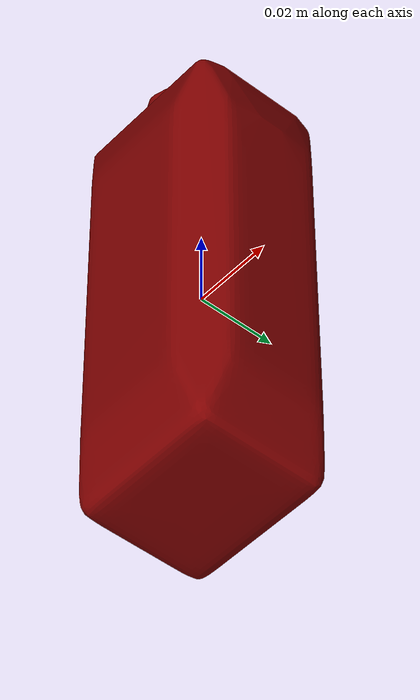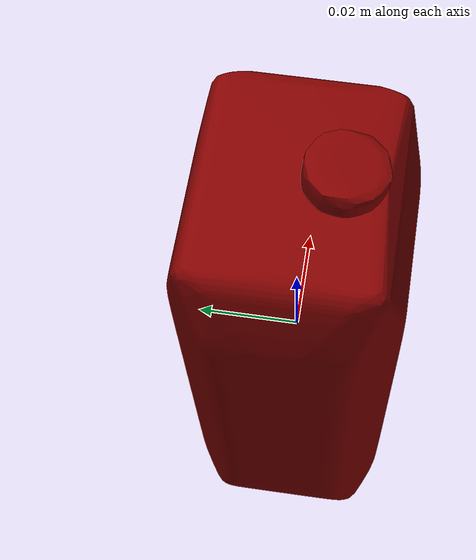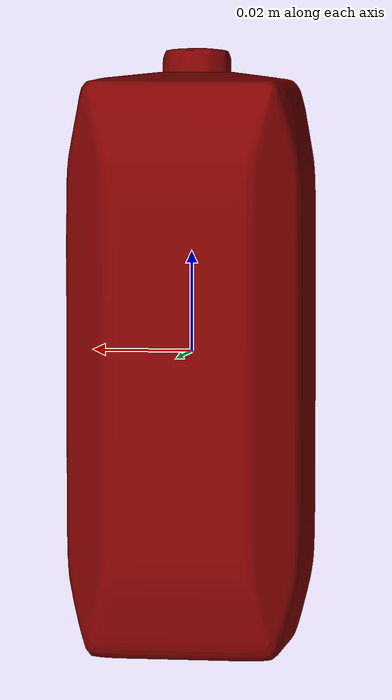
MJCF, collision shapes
<?xml version='1.0' encoding='utf-8'?>
<mujoco model="boxed_drink_1">
  <asset>
    <mesh file="visual/model_normalized_0.obj" name="model_normalized_0_vis" scale="0.11999999999999998 0.11999999999999998 0.11999999999999998" refquat="0.7071067811865475 0.0 0.0 0.7071067811865476" />
    <mesh file="visual/model_normalized_1.obj" name="model_normalized_1_vis" scale="0.11999999999999998 0.11999999999999998 0.11999999999999998" refquat="0.7071067811865475 0.0 0.0 0.7071067811865476" />
    <texture type="2d" name="image0" file="visual/image0.png" />
    <material name="Cylinder.003__0" texture="image0" specular="0.5" shininess="0.15999998099999999" />
    <material name="Material.066" texture="image0" specular="0.5" shininess="0.032000008" />
    <mesh file="collision/collision_mesh_collision_0.obj" name="boxed_collision_mesh_0" scale="0.11999999999999998 0.11999999999999998 0.11999999999999998" refquat="0.7071067811865475 0.0 0.0 0.7071067811865476" />
    <mesh file="collision/collision_mesh_collision_1.obj" name="boxed_collision_mesh_1" scale="0.11999999999999998 0.11999999999999998 0.11999999999999998" refquat="0.7071067811865475 0.0 0.0 0.7071067811865476" />
  </asset>
  <default>
    <default class="region">
      <geom group="1" conaffinity="0" contype="0" rgba="0 1 0 0" mass="0" />
    </default>
    <default class="collision">
      <geom group="0" rgba="0.5 0 0 0.5" density="1159.496919943" />
    </default>
  </default>
  <worldbody>
    <body>
      <body name="object">
        <geom solimp="0.998 0.998 0.001" solref="0.001 1" density="115.949691994" friction="0.95 0.3 0.1" type="mesh" mesh="model_normalized_0_vis" conaffinity="0" contype="0" group="1" material="Cylinder.003__0" />
        <geom solimp="0.998 0.998 0.001" solref="0.001 1" density="115.949691994" friction="0.95 0.3 0.1" type="mesh" mesh="model_normalized_1_vis" conaffinity="0" contype="0" group="1" material="Material.066" />
        <geom class="region" name="reg_bbox" type="box" pos="-6.497339999999851e-05 0.0 -5.5997400000005184e-05" size="0.023877221399999995 0.020377624799999997 0.06060400499999999" />
        <geom mesh="boxed_collision_mesh_0" type="mesh" class="collision" />
        <geom mesh="boxed_collision_mesh_1" type="mesh" class="collision" />
      </body>
    </body>
  </worldbody>
</mujoco>
